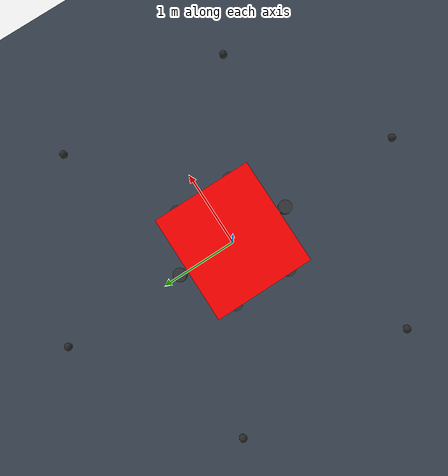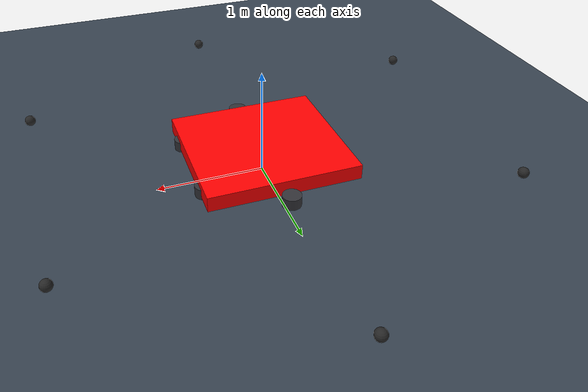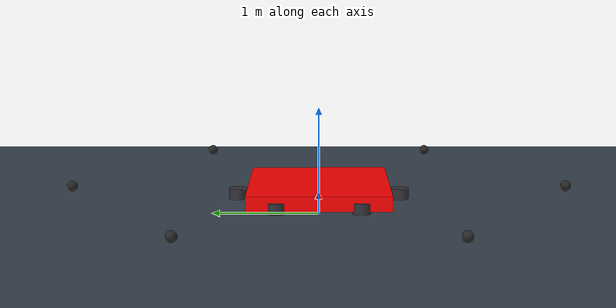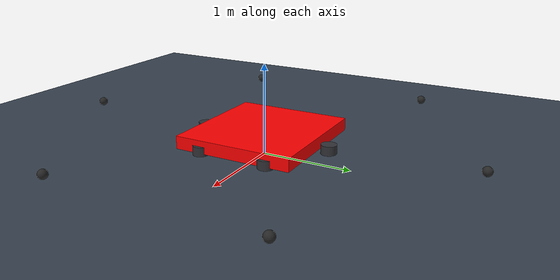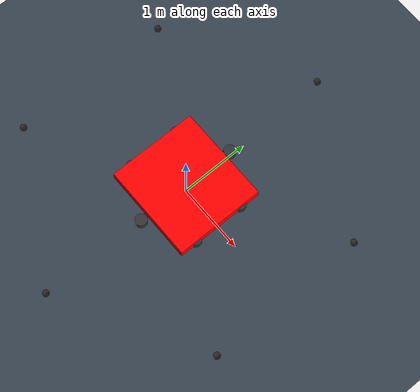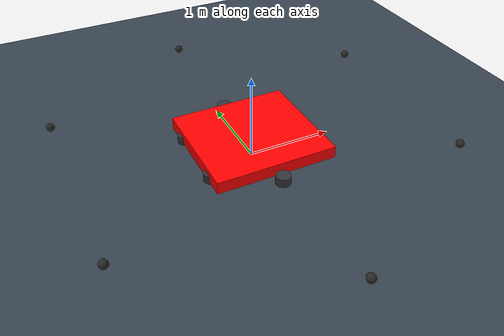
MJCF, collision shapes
<mujoco model="hexapod_walker">
  <compiler angle="radian" coordinate="local" autolimits="true" meshdir="/Users/lukas/weird_objects/hexapod_walker/fullsize_v1/stl"/>
  <option gravity="0 0 -9.81" timestep="0.002" iterations="50" solver="Newton" cone="elliptic"/>

  <default>
    <joint armature="0.5" damping="2" limited="true"/>
    <geom solref="0.005 1" solimp="0.95 0.99 0.001"/>
    <default class="visual">
      <geom contype="0" conaffinity="0" group="2" density="0"/>
    </default>
    <default class="collision">
      <geom group="3" rgba="1 0 0 0.25" condim="4" friction="1.5 0.05 0.0001"/>
    </default>
    <default class="foot">
      <geom group="3" rgba="0.15 0.15 0.15 1" condim="6" friction="2.0 0.1 0.001"
            solref="0.01 1" solimp="0.95 0.99 0.001"/>
    </default>
  </default>

  <asset>
    <texture name="skybox" type="skybox" builtin="gradient" rgb1="0.7 0.85 1.0" rgb2="0.4 0.5 0.7" width="256" height="256"/>
    <texture name="grid" type="2d" builtin="checker" rgb1="0.25 0.3 0.35"
             rgb2="0.18 0.22 0.27" width="300" height="300"/>
    <material name="grid" texture="grid" texrepeat="6 6" reflectance="0.15"/>
    <material name="alu"   rgba="0.78 0.80 0.83 1" specular="0.5" shininess="0.4"/>
    <material name="motor" rgba="0.2  0.2  0.22 1" specular="0.6" shininess="0.6"/>
    <material name="frame" rgba="0.55 0.58 0.62 1" specular="0.4" shininess="0.4"/>
    <material name="rubber" rgba="0.12 0.12 0.12 1"/>

    <mesh name="chassis_hex"      file="chassis_hex.stl"      scale="0.001 0.001 0.001"/>
    <mesh name="chassis_top_deck" file="chassis_top_deck.stl" scale="0.001 0.001 0.001"/>
    <mesh name="saddle_mount"     file="saddle_mount.stl"     scale="0.001 0.001 0.001"/>
    <mesh name="battery_box"      file="battery_box.stl"      scale="0.001 0.001 0.001"/>
    <mesh name="electronics_bay"  file="electronics_bay.stl"  scale="0.001 0.001 0.001"/>
    <mesh name="coxa_bracket"     file="coxa_bracket.stl"     scale="0.001 0.001 0.001"/>
    <mesh name="coxa_link"        file="coxa_link.stl"        scale="0.001 0.001 0.001"/>
    <mesh name="femur_link"       file="femur_link.stl"       scale="0.001 0.001 0.001"/>
    <mesh name="tibia_link"       file="tibia_link.stl"       scale="0.001 0.001 0.001"/>
    <mesh name="foot_pad"         file="foot_pad.stl"         scale="0.001 0.001 0.001"/>
  </asset>

  <worldbody>
    <light name="sun" pos="6 -4 8" dir="-0.6 0.4 -1" castshadow="true"
           diffuse="0.7 0.7 0.7" specular="0.3 0.3 0.3"/>
    <light name="fill" pos="-4 4 6" dir="0.5 -0.5 -1" diffuse="0.3 0.3 0.35"/>
    <geom name="floor" type="plane" size="20 20 0.05" material="grid"
          friction="1.5 0.05 0.0001"/>

    <body name="chassis" pos="0 0 0.19029">
      <freejoint name="root"/>
      <site name="chassis_imu" pos="0 0 0.06" size="0.02"/>
      <inertial pos="0 0 0.05" mass="195.0"
                diaginertia="32 32 60"/>

      <!-- visual chassis tubes + deck + saddle/battery/elec stack -->
      <geom class="visual" type="mesh" mesh="chassis_hex"      material="frame"/>
      <geom class="visual" type="mesh" mesh="chassis_top_deck" material="alu"
            pos="0 0 0.072"/>
      <geom class="visual" type="mesh" mesh="saddle_mount"     material="alu"
            pos="0 0 0.078"/>
      <geom class="visual" type="mesh" mesh="battery_box"      material="frame"
            pos="-0.26 0 0.078"/>
      <geom class="visual" type="mesh" mesh="electronics_bay"  material="frame"
            pos="0.26 0 0.078"/>

      <!-- collision: a hex-prism approximated by a single oriented box -->
      <geom class="collision" name="chassis_box" type="box"
            pos="0 0 0.05" size="0.7 0.65 0.07"/>

      <body name="L0_yaw" pos="0.65385 0.37750 0.07500" quat="0.965926 0 0 0.258819">
        <inertial pos="0.05 0 0" mass="7.0"
                  diaginertia="0.05 0.05 0.05"/>
        <joint name="L0_yaw" type="hinge" axis="0 0 1"
               range="-0.7854 0.7854"/>
        <geom class="visual" type="mesh" mesh="coxa_link"  material="alu"/>
        <!-- yaw motor housing (decorative) -->
        <geom class="visual" type="cylinder" material="motor"
              pos="0 0 -0.07" size="0.0850 0.05"/>

        <body name="L0_femur" pos="0.15000 0 0">
          <inertial pos="0.3000 0 0" mass="14.0"
                    diaginertia="0.05 0.45 0.45"/>
          <joint name="L0_pitch" type="hinge" axis="0 1 0"
                 range="-1.4 0.7"/>
          <geom class="visual" type="mesh" mesh="femur_link" material="alu"/>
          <!-- femur capsule kept for inertia approximation only (no
               collision: ground contact happens at the foot sphere) -->
          <geom class="visual" type="capsule" rgba="0 0 0 0"
                fromto="0 0 0 0.60000 0 0" size="0.06"/>

          <body name="L0_tibia" pos="0.60000 0 0">
            <inertial pos="0.4000 0 0" mass="12.0"
                      diaginertia="0.04 0.65 0.65"/>
            <joint name="L0_knee" type="hinge" axis="0 1 0"
                   range="-0.3 1.7"/>
            <geom class="visual" type="mesh" mesh="tibia_link" material="alu"/>
            <geom class="visual" type="capsule" rgba="0 0 0 0"
                  fromto="0 0 0 0.75000 0 0" size="0.05"/>
            <!-- foot pad (visual) -->
            <geom class="visual" type="mesh" mesh="foot_pad" material="rubber"
                  pos="0.80000 0 -0.072" euler="0 0 0"/>
            <!-- foot collision sphere centred at the tibia tip; the
                 sphere bottom is what makes ground contact -->
            <geom class="foot" name="L0_foot" type="sphere"
                  pos="0.80000 0 0" size="0.05"/>
            <site name="L0_foot_site" pos="0.80000 0 0"
                  size="0.01"/>
          </body>
        </body>
      </body>
      <body name="L1_yaw" pos="0.00000 0.75500 0.07500" quat="0.707107 0 0 0.707107">
        <inertial pos="0.05 0 0" mass="7.0"
                  diaginertia="0.05 0.05 0.05"/>
        <joint name="L1_yaw" type="hinge" axis="0 0 1"
               range="-0.7854 0.7854"/>
        <geom class="visual" type="mesh" mesh="coxa_link"  material="alu"/>
        <!-- yaw motor housing (decorative) -->
        <geom class="visual" type="cylinder" material="motor"
              pos="0 0 -0.07" size="0.0850 0.05"/>

        <body name="L1_femur" pos="0.15000 0 0">
          <inertial pos="0.3000 0 0" mass="14.0"
                    diaginertia="0.05 0.45 0.45"/>
          <joint name="L1_pitch" type="hinge" axis="0 1 0"
                 range="-1.4 0.7"/>
          <geom class="visual" type="mesh" mesh="femur_link" material="alu"/>
          <!-- femur capsule kept for inertia approximation only (no
               collision: ground contact happens at the foot sphere) -->
          <geom class="visual" type="capsule" rgba="0 0 0 0"
                fromto="0 0 0 0.60000 0 0" size="0.06"/>

          <body name="L1_tibia" pos="0.60000 0 0">
            <inertial pos="0.4000 0 0" mass="12.0"
                      diaginertia="0.04 0.65 0.65"/>
            <joint name="L1_knee" type="hinge" axis="0 1 0"
                   range="-0.3 1.7"/>
            <geom class="visual" type="mesh" mesh="tibia_link" material="alu"/>
            <geom class="visual" type="capsule" rgba="0 0 0 0"
                  fromto="0 0 0 0.75000 0 0" size="0.05"/>
            <!-- foot pad (visual) -->
            <geom class="visual" type="mesh" mesh="foot_pad" material="rubber"
                  pos="0.80000 0 -0.072" euler="0 0 0"/>
            <!-- foot collision sphere centred at the tibia tip; the
                 sphere bottom is what makes ground contact -->
            <geom class="foot" name="L1_foot" type="sphere"
                  pos="0.80000 0 0" size="0.05"/>
            <site name="L1_foot_site" pos="0.80000 0 0"
                  size="0.01"/>
          </body>
        </body>
      </body>
      <body name="L2_yaw" pos="-0.65385 0.37750 0.07500" quat="0.258819 0 0 0.965926">
        <inertial pos="0.05 0 0" mass="7.0"
                  diaginertia="0.05 0.05 0.05"/>
        <joint name="L2_yaw" type="hinge" axis="0 0 1"
               range="-0.7854 0.7854"/>
        <geom class="visual" type="mesh" mesh="coxa_link"  material="alu"/>
        <!-- yaw motor housing (decorative) -->
        <geom class="visual" type="cylinder" material="motor"
              pos="0 0 -0.07" size="0.0850 0.05"/>

        <body name="L2_femur" pos="0.15000 0 0">
          <inertial pos="0.3000 0 0" mass="14.0"
                    diaginertia="0.05 0.45 0.45"/>
          <joint name="L2_pitch" type="hinge" axis="0 1 0"
                 range="-1.4 0.7"/>
          <geom class="visual" type="mesh" mesh="femur_link" material="alu"/>
          <!-- femur capsule kept for inertia approximation only (no
               collision: ground contact happens at the foot sphere) -->
          <geom class="visual" type="capsule" rgba="0 0 0 0"
                fromto="0 0 0 0.60000 0 0" size="0.06"/>

          <body name="L2_tibia" pos="0.60000 0 0">
            <inertial pos="0.4000 0 0" mass="12.0"
                      diaginertia="0.04 0.65 0.65"/>
            <joint name="L2_knee" type="hinge" axis="0 1 0"
                   range="-0.3 1.7"/>
            <geom class="visual" type="mesh" mesh="tibia_link" material="alu"/>
            <geom class="visual" type="capsule" rgba="0 0 0 0"
                  fromto="0 0 0 0.75000 0 0" size="0.05"/>
            <!-- foot pad (visual) -->
            <geom class="visual" type="mesh" mesh="foot_pad" material="rubber"
                  pos="0.80000 0 -0.072" euler="0 0 0"/>
            <!-- foot collision sphere centred at the tibia tip; the
                 sphere bottom is what makes ground contact -->
            <geom class="foot" name="L2_foot" type="sphere"
                  pos="0.80000 0 0" size="0.05"/>
            <site name="L2_foot_site" pos="0.80000 0 0"
                  size="0.01"/>
          </body>
        </body>
      </body>
      <body name="L3_yaw" pos="-0.65385 -0.37750 0.07500" quat="-0.258819 0 0 0.965926">
        <inertial pos="0.05 0 0" mass="7.0"
                  diaginertia="0.05 0.05 0.05"/>
        <joint name="L3_yaw" type="hinge" axis="0 0 1"
               range="-0.7854 0.7854"/>
        <geom class="visual" type="mesh" mesh="coxa_link"  material="alu"/>
        <!-- yaw motor housing (decorative) -->
        <geom class="visual" type="cylinder" material="motor"
              pos="0 0 -0.07" size="0.0850 0.05"/>

        <body name="L3_femur" pos="0.15000 0 0">
          <inertial pos="0.3000 0 0" mass="14.0"
                    diaginertia="0.05 0.45 0.45"/>
          <joint name="L3_pitch" type="hinge" axis="0 1 0"
                 range="-1.4 0.7"/>
          <geom class="visual" type="mesh" mesh="femur_link" material="alu"/>
          <!-- femur capsule kept for inertia approximation only (no
               collision: ground contact happens at the foot sphere) -->
          <geom class="visual" type="capsule" rgba="0 0 0 0"
                fromto="0 0 0 0.60000 0 0" size="0.06"/>

          <body name="L3_tibia" pos="0.60000 0 0">
            <inertial pos="0.4000 0 0" mass="12.0"
                      diaginertia="0.04 0.65 0.65"/>
            <joint name="L3_knee" type="hinge" axis="0 1 0"
                   range="-0.3 1.7"/>
            <geom class="visual" type="mesh" mesh="tibia_link" material="alu"/>
            <geom class="visual" type="capsule" rgba="0 0 0 0"
                  fromto="0 0 0 0.75000 0 0" size="0.05"/>
            <!-- foot pad (visual) -->
            <geom class="visual" type="mesh" mesh="foot_pad" material="rubber"
                  pos="0.80000 0 -0.072" euler="0 0 0"/>
            <!-- foot collision sphere centred at the tibia tip; the
                 sphere bottom is what makes ground contact -->
            <geom class="foot" name="L3_foot" type="sphere"
                  pos="0.80000 0 0" size="0.05"/>
            <site name="L3_foot_site" pos="0.80000 0 0"
                  size="0.01"/>
          </body>
        </body>
      </body>
      <body name="L4_yaw" pos="-0.00000 -0.75500 0.07500" quat="-0.707107 0 0 0.707107">
        <inertial pos="0.05 0 0" mass="7.0"
                  diaginertia="0.05 0.05 0.05"/>
        <joint name="L4_yaw" type="hinge" axis="0 0 1"
               range="-0.7854 0.7854"/>
        <geom class="visual" type="mesh" mesh="coxa_link"  material="alu"/>
        <!-- yaw motor housing (decorative) -->
        <geom class="visual" type="cylinder" material="motor"
              pos="0 0 -0.07" size="0.0850 0.05"/>

        <body name="L4_femur" pos="0.15000 0 0">
          <inertial pos="0.3000 0 0" mass="14.0"
                    diaginertia="0.05 0.45 0.45"/>
          <joint name="L4_pitch" type="hinge" axis="0 1 0"
                 range="-1.4 0.7"/>
          <geom class="visual" type="mesh" mesh="femur_link" material="alu"/>
          <!-- femur capsule kept for inertia approximation only (no
               collision: ground contact happens at the foot sphere) -->
          <geom class="visual" type="capsule" rgba="0 0 0 0"
                fromto="0 0 0 0.60000 0 0" size="0.06"/>

          <body name="L4_tibia" pos="0.60000 0 0">
            <inertial pos="0.4000 0 0" mass="12.0"
                      diaginertia="0.04 0.65 0.65"/>
            <joint name="L4_knee" type="hinge" axis="0 1 0"
                   range="-0.3 1.7"/>
            <geom class="visual" type="mesh" mesh="tibia_link" material="alu"/>
            <geom class="visual" type="capsule" rgba="0 0 0 0"
                  fromto="0 0 0 0.75000 0 0" size="0.05"/>
            <!-- foot pad (visual) -->
            <geom class="visual" type="mesh" mesh="foot_pad" material="rubber"
                  pos="0.80000 0 -0.072" euler="0 0 0"/>
            <!-- foot collision sphere centred at the tibia tip; the
                 sphere bottom is what makes ground contact -->
            <geom class="foot" name="L4_foot" type="sphere"
                  pos="0.80000 0 0" size="0.05"/>
            <site name="L4_foot_site" pos="0.80000 0 0"
                  size="0.01"/>
          </body>
        </body>
      </body>
      <body name="L5_yaw" pos="0.65385 -0.37750 0.07500" quat="-0.965926 0 0 0.258819">
        <inertial pos="0.05 0 0" mass="7.0"
                  diaginertia="0.05 0.05 0.05"/>
        <joint name="L5_yaw" type="hinge" axis="0 0 1"
               range="-0.7854 0.7854"/>
        <geom class="visual" type="mesh" mesh="coxa_link"  material="alu"/>
        <!-- yaw motor housing (decorative) -->
        <geom class="visual" type="cylinder" material="motor"
              pos="0 0 -0.07" size="0.0850 0.05"/>

        <body name="L5_femur" pos="0.15000 0 0">
          <inertial pos="0.3000 0 0" mass="14.0"
                    diaginertia="0.05 0.45 0.45"/>
          <joint name="L5_pitch" type="hinge" axis="0 1 0"
                 range="-1.4 0.7"/>
          <geom class="visual" type="mesh" mesh="femur_link" material="alu"/>
          <!-- femur capsule kept for inertia approximation only (no
               collision: ground contact happens at the foot sphere) -->
          <geom class="visual" type="capsule" rgba="0 0 0 0"
                fromto="0 0 0 0.60000 0 0" size="0.06"/>

          <body name="L5_tibia" pos="0.60000 0 0">
            <inertial pos="0.4000 0 0" mass="12.0"
                      diaginertia="0.04 0.65 0.65"/>
            <joint name="L5_knee" type="hinge" axis="0 1 0"
                   range="-0.3 1.7"/>
            <geom class="visual" type="mesh" mesh="tibia_link" material="alu"/>
            <geom class="visual" type="capsule" rgba="0 0 0 0"
                  fromto="0 0 0 0.75000 0 0" size="0.05"/>
            <!-- foot pad (visual) -->
            <geom class="visual" type="mesh" mesh="foot_pad" material="rubber"
                  pos="0.80000 0 -0.072" euler="0 0 0"/>
            <!-- foot collision sphere centred at the tibia tip; the
                 sphere bottom is what makes ground contact -->
            <geom class="foot" name="L5_foot" type="sphere"
                  pos="0.80000 0 0" size="0.05"/>
            <site name="L5_foot_site" pos="0.80000 0 0"
                  size="0.01"/>
          </body>
        </body>
      </body>
    </body>
  </worldbody>

  <actuator>
    <position name="L0_yaw"   joint="L0_yaw"   kp="6000.0"
              forcerange="-1700.0 1700.0"/>
    <position name="L0_pitch" joint="L0_pitch" kp="35000.0"
              forcerange="-1700.0 1700.0"/>
    <position name="L0_knee"  joint="L0_knee"  kp="25000.0"
              forcerange="-1700.0 1700.0"/>
    <velocity name="L0_yaw_d"   joint="L0_yaw"   kv="400.0"
              forcerange="-1700.0 1700.0"/>
    <velocity name="L0_pitch_d" joint="L0_pitch" kv="1500.0"
              forcerange="-1700.0 1700.0"/>
    <velocity name="L0_knee_d"  joint="L0_knee"  kv="1000.0"
              forcerange="-1700.0 1700.0"/>
    <position name="L1_yaw"   joint="L1_yaw"   kp="6000.0"
              forcerange="-1700.0 1700.0"/>
    <position name="L1_pitch" joint="L1_pitch" kp="35000.0"
              forcerange="-1700.0 1700.0"/>
    <position name="L1_knee"  joint="L1_knee"  kp="25000.0"
              forcerange="-1700.0 1700.0"/>
    <velocity name="L1_yaw_d"   joint="L1_yaw"   kv="400.0"
              forcerange="-1700.0 1700.0"/>
    <velocity name="L1_pitch_d" joint="L1_pitch" kv="1500.0"
              forcerange="-1700.0 1700.0"/>
    <velocity name="L1_knee_d"  joint="L1_knee"  kv="1000.0"
              forcerange="-1700.0 1700.0"/>
    <position name="L2_yaw"   joint="L2_yaw"   kp="6000.0"
              forcerange="-1700.0 1700.0"/>
    <position name="L2_pitch" joint="L2_pitch" kp="35000.0"
              forcerange="-1700.0 1700.0"/>
    <position name="L2_knee"  joint="L2_knee"  kp="25000.0"
              forcerange="-1700.0 1700.0"/>
    <velocity name="L2_yaw_d"   joint="L2_yaw"   kv="400.0"
              forcerange="-1700.0 1700.0"/>
    <velocity name="L2_pitch_d" joint="L2_pitch" kv="1500.0"
              forcerange="-1700.0 1700.0"/>
    <velocity name="L2_knee_d"  joint="L2_knee"  kv="1000.0"
              forcerange="-1700.0 1700.0"/>
    <position name="L3_yaw"   joint="L3_yaw"   kp="6000.0"
              forcerange="-1700.0 1700.0"/>
    <position name="L3_pitch" joint="L3_pitch" kp="35000.0"
              forcerange="-1700.0 1700.0"/>
    <position name="L3_knee"  joint="L3_knee"  kp="25000.0"
              forcerange="-1700.0 1700.0"/>
    <velocity name="L3_yaw_d"   joint="L3_yaw"   kv="400.0"
              forcerange="-1700.0 1700.0"/>
    <velocity name="L3_pitch_d" joint="L3_pitch" kv="1500.0"
              forcerange="-1700.0 1700.0"/>
    <velocity name="L3_knee_d"  joint="L3_knee"  kv="1000.0"
              forcerange="-1700.0 1700.0"/>
    <position name="L4_yaw"   joint="L4_yaw"   kp="6000.0"
              forcerange="-1700.0 1700.0"/>
    <position name="L4_pitch" joint="L4_pitch" kp="35000.0"
              forcerange="-1700.0 1700.0"/>
    <position name="L4_knee"  joint="L4_knee"  kp="25000.0"
              forcerange="-1700.0 1700.0"/>
    <velocity name="L4_yaw_d"   joint="L4_yaw"   kv="400.0"
              forcerange="-1700.0 1700.0"/>
    <velocity name="L4_pitch_d" joint="L4_pitch" kv="1500.0"
              forcerange="-1700.0 1700.0"/>
    <velocity name="L4_knee_d"  joint="L4_knee"  kv="1000.0"
              forcerange="-1700.0 1700.0"/>
    <position name="L5_yaw"   joint="L5_yaw"   kp="6000.0"
              forcerange="-1700.0 1700.0"/>
    <position name="L5_pitch" joint="L5_pitch" kp="35000.0"
              forcerange="-1700.0 1700.0"/>
    <position name="L5_knee"  joint="L5_knee"  kp="25000.0"
              forcerange="-1700.0 1700.0"/>
    <velocity name="L5_yaw_d"   joint="L5_yaw"   kv="400.0"
              forcerange="-1700.0 1700.0"/>
    <velocity name="L5_pitch_d" joint="L5_pitch" kv="1500.0"
              forcerange="-1700.0 1700.0"/>
    <velocity name="L5_knee_d"  joint="L5_knee"  kv="1000.0"
              forcerange="-1700.0 1700.0"/>
  </actuator>

  <sensor>
    <jointpos name="L0_yaw_p"    joint="L0_yaw"/>
    <jointpos name="L0_pitch_p"  joint="L0_pitch"/>
    <jointpos name="L0_knee_p"   joint="L0_knee"/>
    <touch    name="L0_foot_t"   site="L0_foot_site"/>
    <jointpos name="L1_yaw_p"    joint="L1_yaw"/>
    <jointpos name="L1_pitch_p"  joint="L1_pitch"/>
    <jointpos name="L1_knee_p"   joint="L1_knee"/>
    <touch    name="L1_foot_t"   site="L1_foot_site"/>
    <jointpos name="L2_yaw_p"    joint="L2_yaw"/>
    <jointpos name="L2_pitch_p"  joint="L2_pitch"/>
    <jointpos name="L2_knee_p"   joint="L2_knee"/>
    <touch    name="L2_foot_t"   site="L2_foot_site"/>
    <jointpos name="L3_yaw_p"    joint="L3_yaw"/>
    <jointpos name="L3_pitch_p"  joint="L3_pitch"/>
    <jointpos name="L3_knee_p"   joint="L3_knee"/>
    <touch    name="L3_foot_t"   site="L3_foot_site"/>
    <jointpos name="L4_yaw_p"    joint="L4_yaw"/>
    <jointpos name="L4_pitch_p"  joint="L4_pitch"/>
    <jointpos name="L4_knee_p"   joint="L4_knee"/>
    <touch    name="L4_foot_t"   site="L4_foot_site"/>
    <jointpos name="L5_yaw_p"    joint="L5_yaw"/>
    <jointpos name="L5_pitch_p"  joint="L5_pitch"/>
    <jointpos name="L5_knee_p"   joint="L5_knee"/>
    <touch    name="L5_foot_t"   site="L5_foot_site"/>
    <accelerometer name="chassis_acc" site="chassis_imu"/>
    <gyro          name="chassis_gyro" site="chassis_imu"/>
    <framepos      name="chassis_pos"  objtype="body" objname="chassis"/>
    <framezaxis    name="chassis_up"   objtype="body" objname="chassis"/>
  </sensor>
</mujoco>
